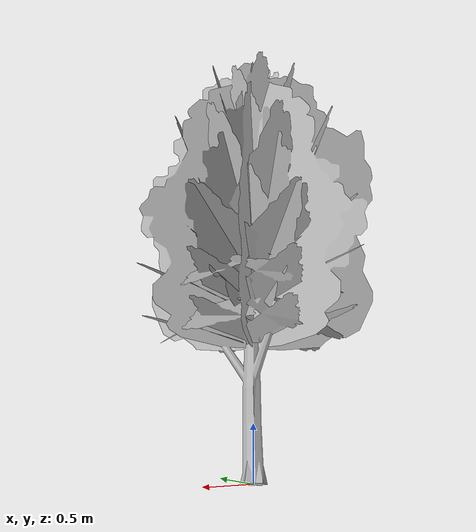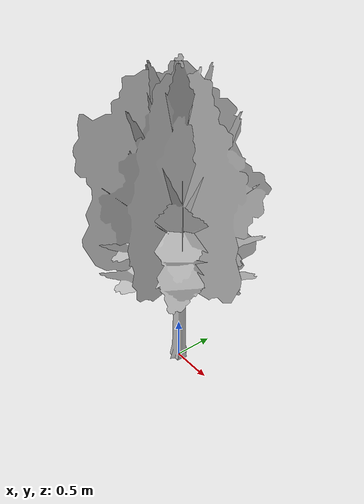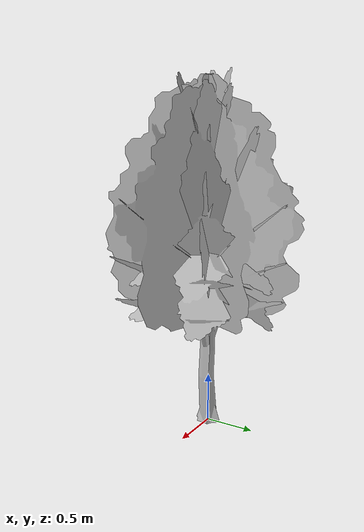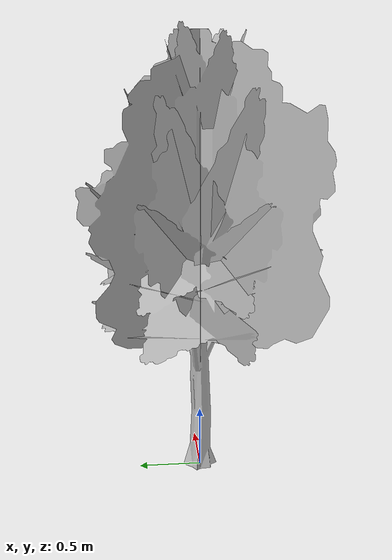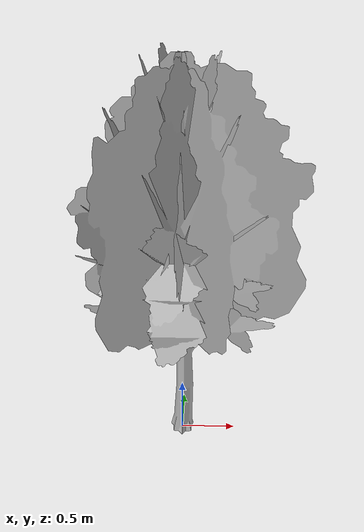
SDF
<?xml version="1.0"?>
<sdf version="1.4">
  <model name="tree3">
    <static>true</static>
    <link name="link">
      <pose>0 0 0 0 0 0</pose>
      <collision name="collision">
        <geometry>
          <mesh>
             <uri>model://tree3/models/tree3.dae</uri>
	     <scale>0.3 0.3 0.3</scale>
          </mesh>
        </geometry>
      </collision>
      <visual name="visual">
         <geometry>
          <mesh>
             <uri>model://tree3/models/tree3.dae</uri>
	     <scale>0.3 0.3 0.3</scale>
          </mesh>
        </geometry>
      </visual>
    </link>
  </model>
</sdf>
